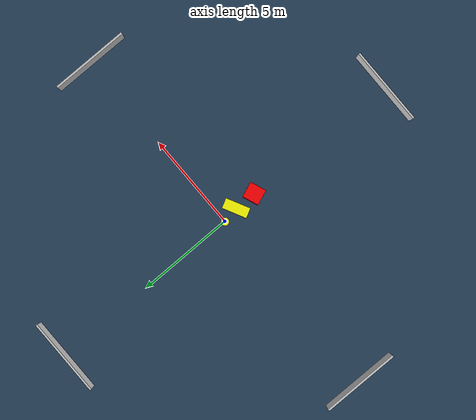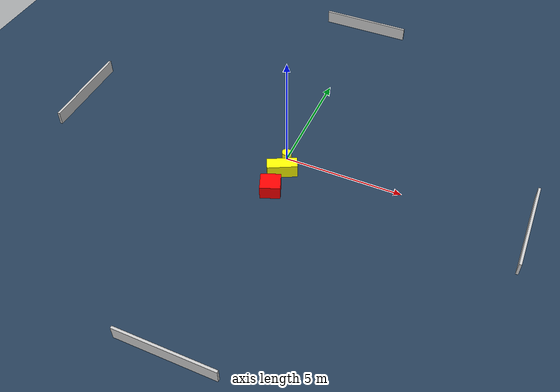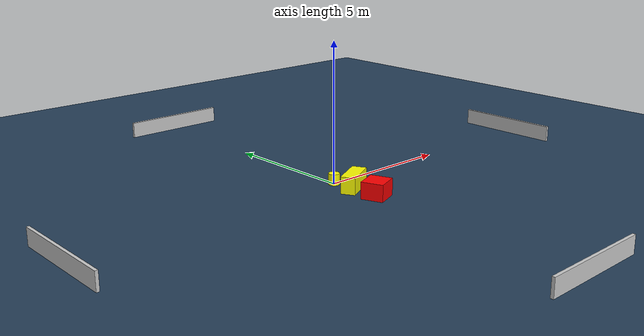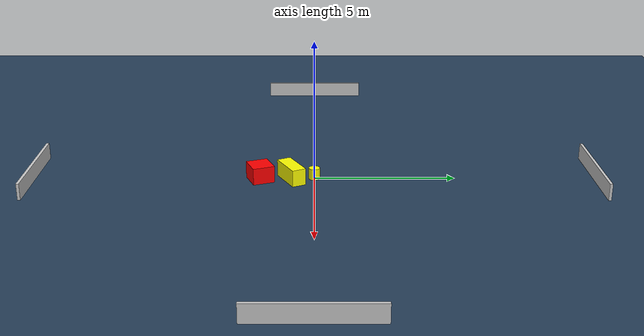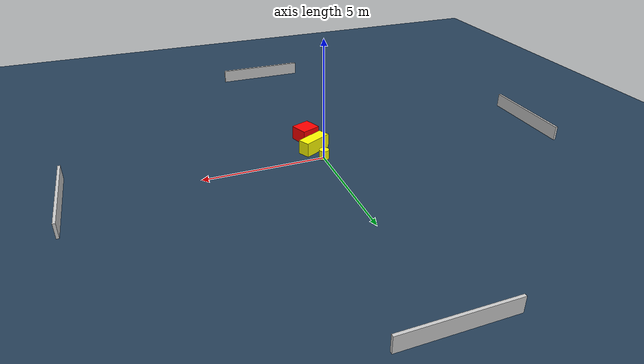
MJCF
<?xml version="1.0" ?>
<mujoco model="generated_environment">
  <option timestep="0.01" integrator="RK4" cone="elliptic"/>
  <default>
    <geom density="1"/>
  </default>
  <asset>
    <texture builtin="gradient" height="3072" name="skybox" rgb1="0.3 0.5 0.7" rgb2="0 0 0" type="skybox" width="512"/>
    <texture builtin="checker" height="300" name="groundplane" rgb1="0.2 0.3 0.4" rgb2="0.1 0.2 0.3" type="2d" width="300"/>
    <material name="groundplane" reflectance="0.2" texrepeat="5 5" texture="groundplane"/>
  </asset>
  <worldbody>
    <light dir="0 0 -1" directional="true" pos="0 0 1.5"/>
    <geom condim="3" friction="0.5 0.005 0.001" material="groundplane" name="floor" pos="0 0 0" size="0 0 0.05" type="plane"/>
    <body name="walls">
      <geom name="wall_1" condim="4" pos="-10.0 0.0 0.3" rgba="0.800000011920929 0.800000011920929 0.800000011920929 1.0" size="0.05 2.0 0.3" type="box"/>
      <geom name="wall_2" condim="4" pos="10.0 0.0 0.3" rgba="0.800000011920929 0.800000011920929 0.800000011920929 1.0" size="0.05 2.0 0.3" type="box"/>
      <geom name="wall_3" condim="4" pos="0.0 -10.0 0.3" rgba="0.800000011920929 0.800000011920929 0.800000011920929 1.0" size="2.0 0.05 0.3" type="box"/>
      <geom name="wall_4" condim="4" pos="0.0 10.0 0.3" rgba="0.800000011920929 0.800000011920929 0.800000011920929 1.0" size="2.0 0.05 0.3" type="box"/>
    </body>
    <body name="robot">
      <joint name="joint_x" type="slide" pos="0 0 0" axis="1 0 0"/>
      <joint name="joint_y" type="slide" pos="0 0 0" axis="0 1 0"/>
      <geom name="robot" type="cylinder" pos="0.0 0.0 0.2" size="0.2 0.2 0.0" mass="5.0" friction="1.0 0.005 0.0001" condim="4" rgba="1.0 1.0 0.0 1.0"/>
    </body>
    <body name="obstacle_1_movable">
      <geom name="obstacle_1_movable" condim="4" pos="0.14943703427446886 -0.8140091212059121 0.3" euler="0 0 207.15024544964675" friction="0.0 0.005 0.001" rgba="1.0 1.0 0.0 1.0" size="0.6251794829695598 0.2562859266422433 0.3" type="box" mass="0.1"/>
      <joint type="free"/>
    </body>
    <body name="obstacle_2_static">
      <geom name="obstacle_2_static" condim="4" pos="0.12858405381160465 -1.9203843542643313 0.3" euler="0 0 201.18789367078833" friction="0.0 0.005 0.001" rgba="1.0 0.0 0.0 1.0" size="0.4150616984642164 0.39268042614673626 0.3" type="box"/>
    </body>
  </worldbody>
  <actuator>
    <motor name="actuator_x" joint="joint_x" gear="1" ctrlrange="-1 1"/>
    <motor name="actuator_y" joint="joint_y" gear="1" ctrlrange="-1 1"/>
  </actuator>
</mujoco>
